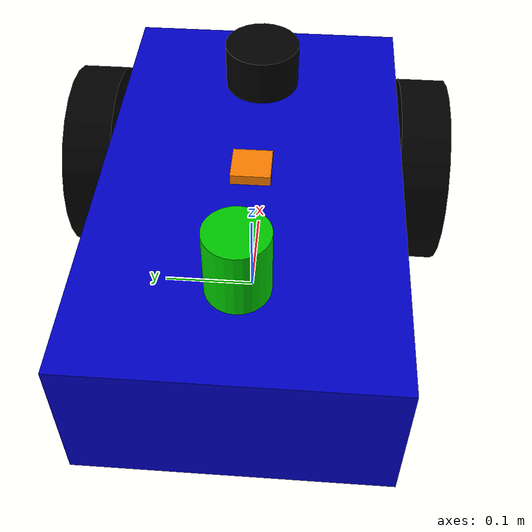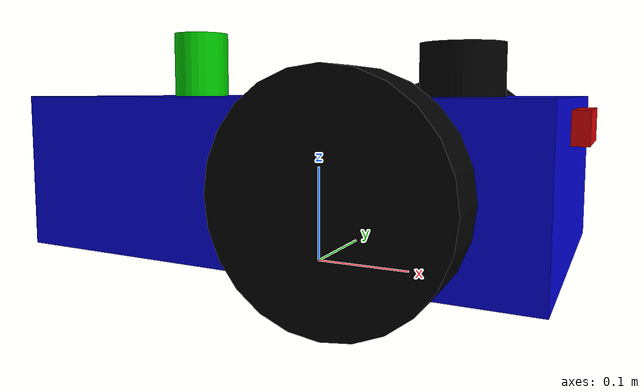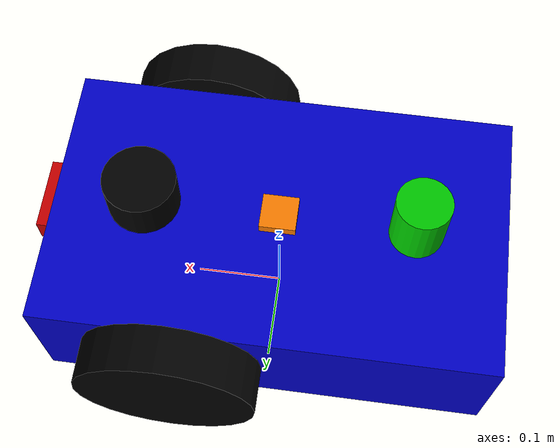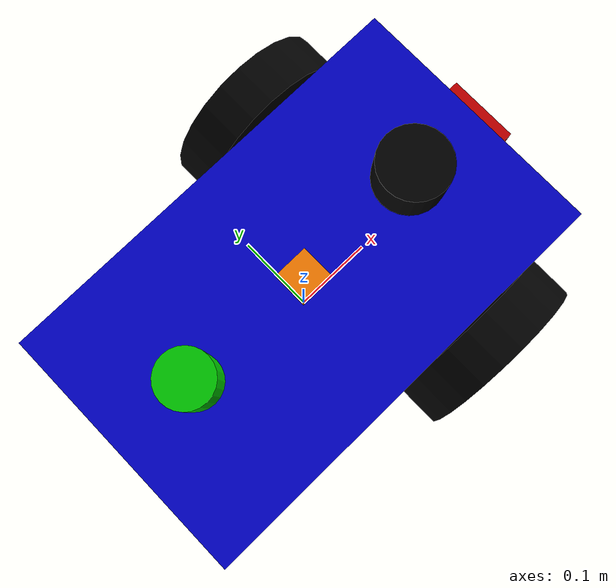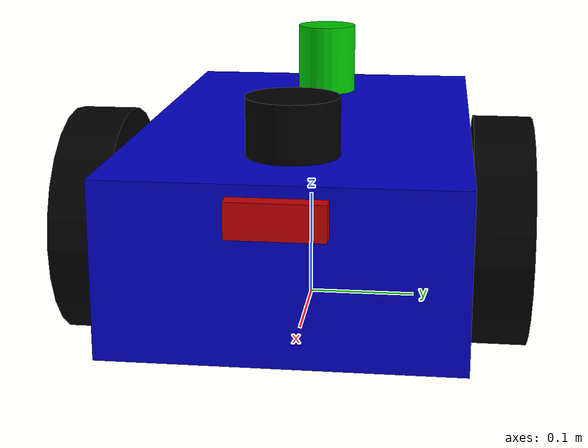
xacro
<?xml version="1.0"?>
<robot name="meu_robo" xmlns:xacro="http://www.ros.org/wiki/xacro">

  <xacro:arg name="noise_scale" default="1.0"/>
  <xacro:property name="ns" value="$(arg noise_scale)"/>

  <!-- Desvios-padrao nominais (escala 1.0) -->
  <xacro:property name="imu_gyro_std"  value="0.01"/>   <!-- rad/s -->
  <xacro:property name="imu_accel_std" value="0.10"/>
  <xacro:property name="gps_h_std"     value="0.05"/>   <!-- m (horizontal, tipo RTK) -->
  <xacro:property name="gps_v_std"     value="0.10"/>   <!-- m (vertical) -->
  <xacro:property name="gps_vel_std"   value="0.05"/>
  <xacro:property name="lidar_std"     value="0.02"/>
  <xacro:property name="camera_std"    value="0.02"/>   <!-- intensidade [0,1] -->

  <!-- MATERIAIS (RViz) -->
  <material name="blue"><color rgba="0 0 0.8 1"/></material>
  <material name="black"><color rgba="0 0 0 1"/></material>
  <material name="white"><color rgba="1 1 1 1"/></material>
  <material name="red"><color rgba="0.8 0 0 1"/></material>
  <material name="orange"><color rgba="1 0.5 0 1"/></material>
  <material name="green"><color rgba="0 0.8 0 1"/></material>

  <!-- BASE FOOTPRINT (Referência de solo) -->
  <link name="base_footprint"/>

  <joint name="base_footprint_joint" type="fixed">
    <parent link="base_footprint"/>
    <child link="base_link"/>
    <origin xyz="0 0 0.1" rpy="0 0 0"/>
  </joint>

  <!-- CHASSI (BASE LINK) -->
  <link name="base_link">
    <visual>
      <origin xyz="0 0 0" rpy="0 0 0"/>
      <geometry>
        <box size="0.5 0.3 0.15"/>
      </geometry>
      <material name="blue"/>
    </visual>
    <collision>
      <origin xyz="0 0 0" rpy="0 0 0"/>
      <geometry>
        <box size="0.5 0.3 0.15"/>
      </geometry>
    </collision>
    <inertial>
      <origin xyz="-0.05 0 -0.02" rpy="0 0 0"/>
      <mass value="5.0"/>
      <inertia ixx="0.046" ixy="0.0" ixz="0.0" iyy="0.113" iyz="0.0" izz="0.141"/>
    </inertial>
  </link>

  <gazebo reference="base_link">
    <material>Gazebo/Blue</material>
  </gazebo>

  <!-- RODA ESQUERDA -->
  <joint name="roda_esquerda_joint" type="continuous">
    <parent link="base_link"/>
    <child link="roda_esquerda"/>
    <origin xyz="0.1 0.175 0" rpy="-1.5708 0 0"/>
    <axis xyz="0 0 1"/>
  </joint>

  <link name="roda_esquerda">
    <visual>
      <geometry>
        <cylinder radius="0.1" length="0.05"/>
      </geometry>
      <material name="black"/>
    </visual>
    <collision>
      <geometry>
        <cylinder radius="0.1" length="0.05"/>
      </geometry>
    </collision>
    <inertial>
      <mass value="0.5"/>
      <inertia ixx="0.0013" ixy="0.0" ixz="0.0" iyy="0.0013" iyz="0.0" izz="0.0025"/>
    </inertial>
  </link>

  <gazebo reference="roda_esquerda">
    <mu1>1.0</mu1>
    <mu2>1.0</mu2>
    <kp>1000000.0</kp>
    <kd>100.0</kd>
    <minDepth>0.001</minDepth>
    <material>Gazebo/Black</material>
  </gazebo>

  <!-- RODA DIREITA -->
  <joint name="roda_direita_joint" type="continuous">
    <parent link="base_link"/>
    <child link="roda_direita"/>
    <origin xyz="0.1 -0.175 0" rpy="-1.5708 0 0"/>
    <axis xyz="0 0 1"/>
  </joint>

  <link name="roda_direita">
    <visual>
      <geometry>
        <cylinder radius="0.1" length="0.05"/>
      </geometry>
      <material name="black"/>
    </visual>
    <collision>
      <geometry>
        <cylinder radius="0.1" length="0.05"/>
      </geometry>
    </collision>
    <inertial>
      <mass value="0.5"/>
      <inertia ixx="0.0013" ixy="0.0" ixz="0.0" iyy="0.0013" iyz="0.0" izz="0.0025"/>
    </inertial>
  </link>

  <gazebo reference="roda_direita">
    <mu1>1.0</mu1>
    <mu2>1.0</mu2>
    <kp>1000000.0</kp>
    <kd>100.0</kd>
    <minDepth>0.001</minDepth>
    <material>Gazebo/Black</material>
  </gazebo>

  <!-- RODA BOBA / CASTER WHEEL (Deslizante sem atrito para nao empinar) -->
  <joint name="caster_wheel_joint" type="fixed">
    <parent link="base_link"/>
    <child link="caster_wheel"/>
    <origin xyz="-0.18 0 -0.05" rpy="0 0 0"/>
  </joint>

  <link name="caster_wheel">
    <visual>
      <geometry>
        <sphere radius="0.05"/>
      </geometry>
      <material name="white"/>
    </visual>
    <collision>
      <geometry>
        <sphere radius="0.05"/>
      </geometry>
    </collision>
    <inertial>
      <mass value="0.1"/>
      <inertia ixx="0.0001" ixy="0.0" ixz="0.0" iyy="0.0001" iyz="0.0" izz="0.0001"/>
    </inertial>
  </link>

  <gazebo reference="caster_wheel">
    <mu1>0.0</mu1>
    <mu2>0.0</mu2>
    <kp>1000000.0</kp>
    <kd>100.0</kd>
    <minDepth>0.001</minDepth>
    <material>Gazebo/White</material>
  </gazebo>

  <!-- 1. CAMERA RGB FRONTAL -->
  <joint name="camera_joint" type="fixed">
    <parent link="base_link"/>
    <child link="camera_link"/>
    <origin xyz="0.25 0 0.05" rpy="0 0 0"/>
  </joint>

  <link name="camera_link">
    <visual>
      <geometry><box size="0.03 0.08 0.03"/></geometry>
      <material name="red"/>
    </visual>
    <collision>
      <geometry><box size="0.03 0.08 0.03"/></geometry>
    </collision>
    <inertial>
      <mass value="0.02"/>
      <inertia ixx="1e-5" ixy="0" ixz="0" iyy="1e-5" iyz="0" izz="1e-5"/>
    </inertial>
  </link>

  <!-- Frame optico (convencao ROS: z para frente, x para a direita, y para baixo) -->
  <joint name="camera_optical_joint" type="fixed">
    <parent link="camera_link"/>
    <child link="camera_link_optical"/>
    <origin xyz="0 0 0" rpy="${-pi/2} 0 ${-pi/2}"/>
  </joint>
  <link name="camera_link_optical"/>

  <gazebo reference="camera_link">
    <material>Gazebo/Red</material>
    <sensor name="camera" type="camera">
      <always_on>true</always_on>
      <visualize>true</visualize>
      <update_rate>15.0</update_rate>
      <camera name="head">
        <horizontal_fov>1.3962634</horizontal_fov>
        <image><width>640</width><height>480</height><format>R8G8B8</format></image>
        <clip><near>0.05</near><far>50.0</far></clip>
        <noise>
          <type>gaussian</type>
          <mean>0.0</mean>
          <stddev>${camera_std * ns}</stddev>
        </noise>
      </camera>
      <plugin name="camera_controller" filename="libgazebo_ros_camera.so">
        <ros>
          <remapping>~/image_raw:=/camera/image_raw</remapping>
          <remapping>~/camera_info:=/camera/camera_info</remapping>
        </ros>
        <camera_name>camera</camera_name>
        <frame_name>camera_link_optical</frame_name>
      </plugin>
    </sensor>
  </gazebo>

  <!-- 2. LIDAR 2D FRONTAL (nuvem de pontos) -->
  <joint name="lidar_joint" type="fixed">
    <parent link="base_link"/>
    <child link="lidar_link"/>
    <origin xyz="0.15 0 0.1" rpy="0 0 0"/>
  </joint>

  <link name="lidar_link">
    <visual>
      <geometry><cylinder radius="0.04" length="0.05"/></geometry>
      <material name="black"/>
    </visual>
    <collision>
      <geometry><cylinder radius="0.04" length="0.05"/></geometry>
    </collision>
    <inertial>
      <mass value="0.1"/>
      <inertia ixx="5e-5" ixy="0" ixz="0" iyy="5e-5" iyz="0" izz="8e-5"/>
    </inertial>
  </link>

  <gazebo reference="lidar_link">
    <material>Gazebo/DarkGrey</material>
    <sensor name="lidar" type="ray">
      <always_on>true</always_on>
      <visualize>true</visualize>
      <update_rate>10</update_rate>
      <ray>
        <scan>
          <horizontal>
            <samples>360</samples>
            <resolution>1</resolution>
            <min_angle>-1.5708</min_angle>
            <max_angle>1.5708</max_angle>
          </horizontal>
        </scan>
        <range><min>0.15</min><max>12.0</max><resolution>0.01</resolution></range>
        <noise>
          <type>gaussian</type>
          <mean>0.0</mean>
          <stddev>${lidar_std * ns}</stddev>
        </noise>
      </ray>
      <plugin name="lidar_plugin" filename="libgazebo_ros_ray_sensor.so">
        <ros><remapping>~/out:=/lidar/points</remapping></ros>
        <output_type>sensor_msgs/PointCloud2</output_type>
        <frame_name>lidar_link</frame_name>
      </plugin>
    </sensor>
  </gazebo>

  <!-- 3. IMU (orientacao, velocidade angular, aceleracao linear) -->
  <joint name="imu_joint" type="fixed">
    <parent link="base_link"/>
    <child link="imu_link"/>
    <origin xyz="0 0 0.08" rpy="0 0 0"/>
  </joint>

  <link name="imu_link">
    <visual>
      <geometry><box size="0.04 0.04 0.012"/></geometry>
      <material name="orange"/>
    </visual>
    <collision>
      <geometry><box size="0.04 0.04 0.012"/></geometry>
    </collision>
    <inertial>
      <mass value="0.01"/>
      <inertia ixx="1e-6" ixy="0" ixz="0" iyy="1e-6" iyz="0" izz="1e-6"/>
    </inertial>
  </link>

  <gazebo reference="imu_link">
    <material>Gazebo/Orange</material>
    <sensor name="imu_sensor" type="imu">
      <always_on>true</always_on>
      <update_rate>100</update_rate>
      <imu>
        <angular_velocity>
          <x><noise type="gaussian"><mean>0.0</mean><stddev>${imu_gyro_std * ns}</stddev><bias_mean>0.0</bias_mean><bias_stddev>0.0</bias_stddev></noise></x>
          <y><noise type="gaussian"><mean>0.0</mean><stddev>${imu_gyro_std * ns}</stddev><bias_mean>0.0</bias_mean><bias_stddev>0.0</bias_stddev></noise></y>
          <z><noise type="gaussian"><mean>0.0</mean><stddev>${imu_gyro_std * ns}</stddev><bias_mean>0.0</bias_mean><bias_stddev>0.0</bias_stddev></noise></z>
        </angular_velocity>
        <linear_acceleration>
          <x><noise type="gaussian"><mean>0.0</mean><stddev>${imu_accel_std * ns}</stddev><bias_mean>0.0</bias_mean><bias_stddev>0.0</bias_stddev></noise></x>
          <y><noise type="gaussian"><mean>0.0</mean><stddev>${imu_accel_std * ns}</stddev><bias_mean>0.0</bias_mean><bias_stddev>0.0</bias_stddev></noise></y>
          <z><noise type="gaussian"><mean>0.0</mean><stddev>${imu_accel_std * ns}</stddev><bias_mean>0.0</bias_mean><bias_stddev>0.0</bias_stddev></noise></z>
        </linear_acceleration>
      </imu>
      <plugin name="imu_plugin" filename="libgazebo_ros_imu_sensor.so">
        <ros><remapping>~/out:=/imu/data</remapping></ros>
        <frame_name>imu_link</frame_name>
        <initial_orientation_as_reference>false</initial_orientation_as_reference>
      </plugin>
    </sensor>
  </gazebo>

  <!-- 4. GPS (lat, lon, alt) -->
  <joint name="gps_joint" type="fixed">
    <parent link="base_link"/>
    <child link="gps_link"/>
    <origin xyz="-0.15 0 0.11" rpy="0 0 0"/>
  </joint>

  <link name="gps_link">
    <visual>
      <geometry><cylinder radius="0.03" length="0.07"/></geometry>
      <material name="green"/>
    </visual>
    <collision>
      <geometry><cylinder radius="0.03" length="0.07"/></geometry>
    </collision>
    <inertial>
      <mass value="0.02"/>
      <inertia ixx="1e-5" ixy="0" ixz="0" iyy="1e-5" iyz="0" izz="1e-5"/>
    </inertial>
  </link>

  <gazebo reference="gps_link">
    <material>Gazebo/Green</material>
    <sensor name="gps_sensor" type="gps">
      <always_on>true</always_on>
      <update_rate>10</update_rate>
      <gps>
        <position_sensing>
          <horizontal><noise type="gaussian"><mean>0.0</mean><stddev>${gps_h_std * ns}</stddev></noise></horizontal>
          <vertical><noise type="gaussian"><mean>0.0</mean><stddev>${gps_v_std * ns}</stddev></noise></vertical>
        </position_sensing>
        <velocity_sensing>
          <horizontal><noise type="gaussian"><mean>0.0</mean><stddev>${gps_vel_std * ns}</stddev></noise></horizontal>
          <vertical><noise type="gaussian"><mean>0.0</mean><stddev>${gps_vel_std * ns}</stddev></noise></vertical>
        </velocity_sensing>
      </gps>
      <plugin name="gps_plugin" filename="libgazebo_ros_gps_sensor.so">
        <ros>
          <remapping>~/out:=/gps/data</remapping>
          <remapping>~/vel:=/gps/vel</remapping>
        </ros>
        <frame_name>gps_link</frame_name>
      </plugin>
    </sensor>
  </gazebo>

  <!-- PLUGIN DE TRAÇÃO DIFERENCIAL -->
  <gazebo>
    <plugin name="diff_drive_controller" filename="libgazebo_ros_diff_drive.so">
      <update_rate>50</update_rate>
      <left_joint>roda_esquerda_joint</left_joint>
      <right_joint>roda_direita_joint</right_joint>
      <wheel_separation>0.35</wheel_separation>
      <wheel_diameter>0.20</wheel_diameter>
      <max_wheel_torque>20</max_wheel_torque>
      <command_topic>cmd_vel</command_topic>
      <odometry_topic>odom</odometry_topic>
      <odometry_frame>odom</odometry_frame>
      <robot_base_frame>base_footprint</robot_base_frame>
      <publish_odom>true</publish_odom>
      <publish_odom_tf>true</publish_odom_tf>
      <publish_wheel_tf>true</publish_wheel_tf>
    </plugin>
  </gazebo>

</robot>
